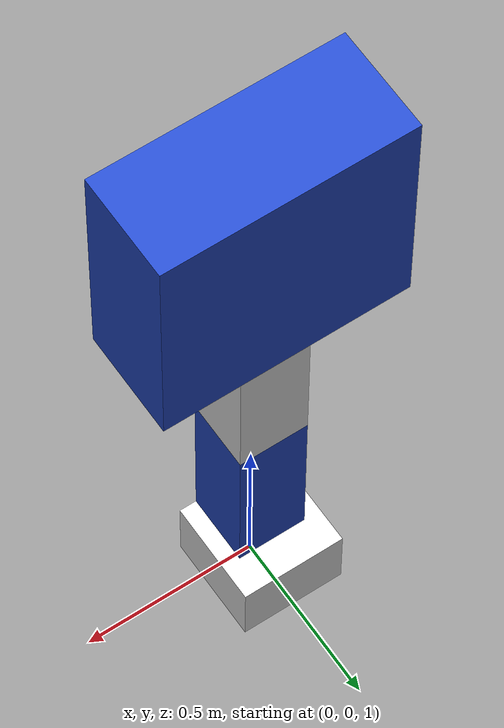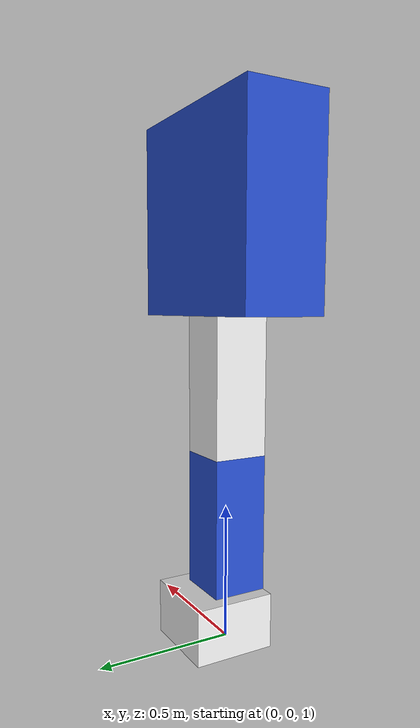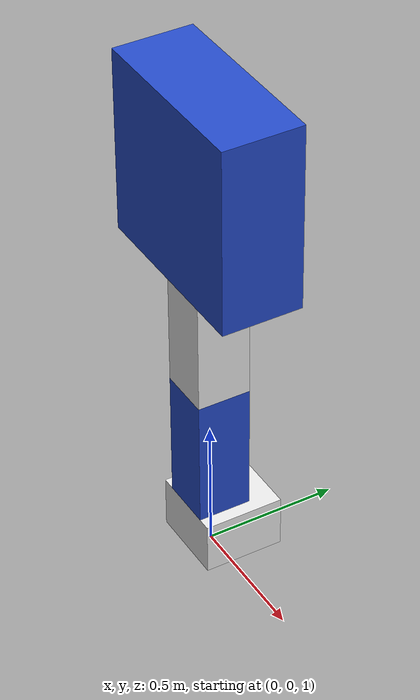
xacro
<?xml version="1.0"?>
<!-- Revolute-Revolute Manipulator -->
<robot name="uniped" xmlns:xacro="http://www.ros.org/wiki/xacro">

  <!-- Constants for robot dimensions -->
  <xacro:property name="PI" value="3.1415926535897931"/>
  <xacro:property name="mass" value="1" /> <!-- arbitrary value for mass -->
  <xacro:property name="torso_width" value="0.7" /> <!-- width of the torso -->
  <xacro:property name="leg_width" value="0.2" /> <!-- with of the leg -->
  <xacro:property name="torso_thickness" value="0.3" /> <!-- thickness of the torso -->
  <xacro:property name="leg_thickness" value="0.2" /> <!-- thickness of the leg -->
  <xacro:property name="torso_length" value="0.7" /> <!-- length of the torso -->
  <xacro:property name="tigh_length" value="0.5" /> <!-- length of the tigh -->
  <xacro:property name="calf_length" value="0.5" /> <!-- length of the calf -->
  <xacro:property name="foot_height" value="0.2" /> <!-- height of the foot -->
  <xacro:property name="foot_width" value="0.3" /> <!-- width of the foot -->
  <xacro:property name="foot_length" value="0.3" /> <!-- length of the foot -->
  <xacro:property name="height" value="1" /> <!-- height of the robot in the air -->

  <xacro:property name="gravity_off" value="1" /> <!-- use gravity flag -->

  <!-- Import all Gazebo-customization elements, including Gazebo colors -->
  <xacro:include filename="$(find uniped_master)/urdf/uniped.gazebo" />
  <!-- Import Rviz colors -->
  <xacro:include filename="$(find uniped_master)/urdf/materials.xacro" />

  <!-- Torso Link -->
  <link name="torso">
    <collision>
      <origin xyz="0 0 ${torso_length/2 + tigh_length + calf_length + foot_height + height}" rpy="0 0 0"/>
      <geometry>
	<box size="${torso_width} ${torso_thickness} ${torso_length}"/>
      </geometry>
    </collision>

    <visual>
      <origin xyz="0 0 ${torso_length/2 + tigh_length + calf_length + foot_height + height}" rpy="0 0 0"/>
      <geometry>
	     <box size="${torso_width} ${torso_thickness} ${torso_length}"/>
      </geometry>
      <material name="blue"/>
    </visual>

    <inertial>
      <origin xyz="0 0 ${torso_length/2 + tigh_length + calf_length + foot_height + height}" rpy="0 0 0"/>
      <mass value="${mass}"/>
      <inertia
	  ixx="${mass / 12.0 * (torso_thickness*torso_thickness + torso_length*torso_length)}" ixy="0.0" ixz="0.0"
	  iyy="${mass / 12.0 * (torso_length*torso_length + torso_width*torso_width)}" iyz="0.0"
	  izz="${mass / 12.0 * (torso_width*torso_width + torso_thickness*torso_thickness)}"/>
    </inertial>
  </link>

  <joint name="hip" type="continuous">
    <parent link="torso"/>
    <child link="tigh"/>
    <origin xyz="0 0 ${tigh_length + calf_length + foot_height + height}" rpy="0 0 0"/>
    <axis xyz="1 0 0"/>
    <dynamics damping="0.0"/>
  </joint>

  <!-- Tigh Link -->
  <link name="tigh">
    <collision>
      <origin xyz="0 0 ${- tigh_length/2}" rpy="0 0 0"/>
      <geometry>
	<box size="${leg_width} ${leg_thickness} ${tigh_length}"/>
      </geometry>
    </collision>

    <visual>
      <origin xyz="0 0 ${- tigh_length/2}" rpy="0 0 0"/>
      <geometry>
	     <box size="${leg_width} ${leg_thickness} ${tigh_length}"/>
      </geometry>
      <material name="white"/>
    </visual>

    <inertial>
      <origin xyz="0 0 ${- tigh_length/2}" rpy="0 0 0"/>
      <mass value="${mass}"/>
      <inertia
	  ixx="${mass / 12.0 * (leg_thickness*leg_thickness + tigh_length*tigh_length)}" ixy="0.0" ixz="0.0"
	  iyy="${mass / 12.0 * (tigh_length*tigh_length + leg_width*leg_width)}" iyz="0.0"
	  izz="${mass / 12.0 * (leg_width*leg_width + leg_thickness*leg_thickness)}"/>
    </inertial>
  </link>

  <joint name="knee" type="continuous">
    <parent link="tigh"/>
    <child link="calf"/>
    <origin xyz="0 0 ${- tigh_length}" rpy="0 0 0"/>
    <axis xyz="1 0 0"/>
    <dynamics damping="0.0"/>
  </joint>

  <link name="calf">
    <collision>
      <origin xyz="0 0 ${- calf_length/2}" rpy="0 0 0"/>
      <geometry>
  <box size="${leg_width} ${leg_thickness} ${calf_length}"/>
      </geometry>
    </collision>

    <visual>
      <origin xyz="0 0 ${- calf_length/2}" rpy="0 0 0"/>
      <geometry>
        <box size="${leg_width} ${leg_thickness} ${calf_length}"/>
      </geometry>
      <material name="blue"/>
    </visual>

    <inertial>
      <origin xyz="0 0 ${- calf_length/2}" rpy="0 0 0"/>
      <mass value="${mass}"/>
      <inertia
    ixx="${mass / 12.0 * (leg_thickness*leg_thickness + calf_length*calf_length)}" ixy="0.0" ixz="0.0"
    iyy="${mass / 12.0 * (calf_length*calf_length + leg_width*leg_width)}" iyz="0.0"
    izz="${mass / 12.0 * (leg_width*leg_width + leg_thickness*leg_thickness)}"/>
    </inertial>
  </link>

  <joint name="ankle" type="continuous">
    <parent link="calf"/>
    <child link="foot"/>
    <origin xyz="0 0 ${- calf_length}" rpy="0 0 0"/>
    <axis xyz="1 0 0"/>
    <dynamics damping="0.0"/>
  </joint>

  <link name="foot">
    <collision>
      <origin xyz="0 ${foot_length/2 - leg_thickness/2} ${- foot_height/2}" rpy="0 0 0"/>
      <geometry>
  <box size="${foot_width} ${foot_length} ${foot_height}"/>
      </geometry>
    </collision>

    <visual>
      <origin xyz="0 ${foot_length/2 - leg_thickness/2} ${- foot_height/2}" rpy="0 0 0"/>
      <geometry>
  <box size="${foot_width} ${foot_length} ${foot_height}"/>
      </geometry>
      <material name="white"/>
    </visual>

    <inertial>
      <origin xyz="0 ${foot_length/2 - leg_thickness/2} ${- foot_height/2}" rpy="0 0 0"/>
      <mass value="${mass}"/>
      <inertia
    ixx="${mass / 12.0 * (foot_length*foot_length + foot_height*foot_height)}" ixy="0.0" ixz="0.0"
    iyy="${mass / 12.0 * (foot_height*foot_height + foot_width*foot_width)}" iyz="0.0"
    izz="${mass / 12.0 * (foot_width*foot_width + foot_length*foot_length)}"/>
    </inertial>
  </link>

  <gazebo reference="torso"><turnGravityOff>${gravity_off}</turnGravityOff></gazebo>
  <gazebo reference="tigh"><turnGravityOff>${gravity_off}</turnGravityOff></gazebo>
  <gazebo reference="calf"><turnGravityOff>${gravity_off}</turnGravityOff></gazebo>
  <gazebo reference="foot"><turnGravityOff>${gravity_off}</turnGravityOff></gazebo>
</robot>
